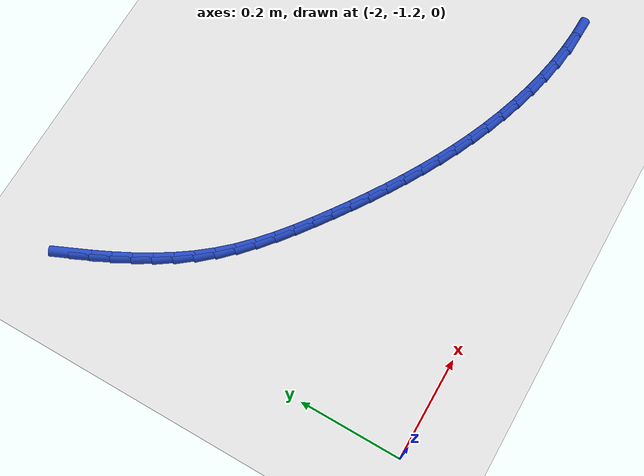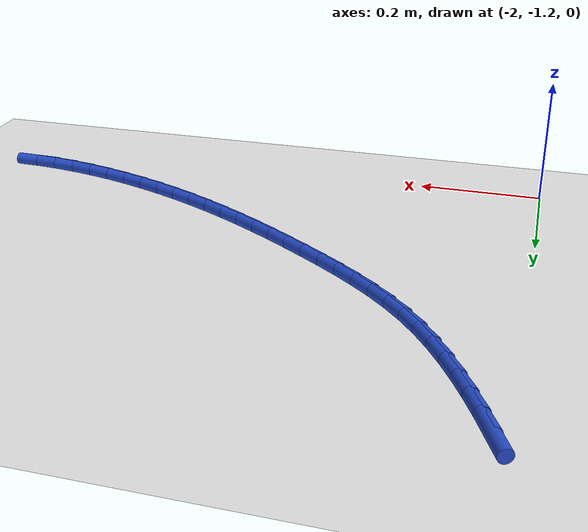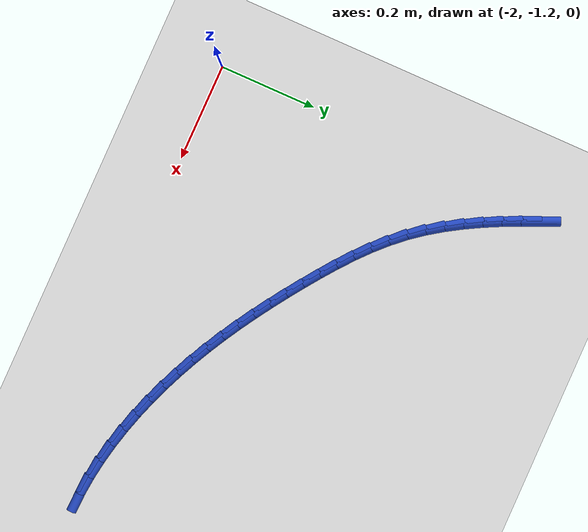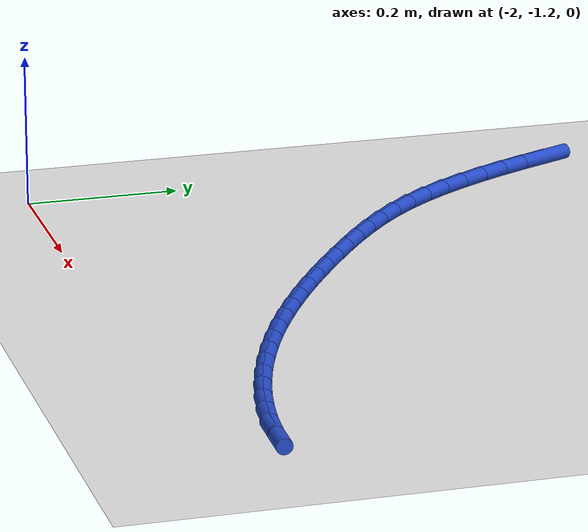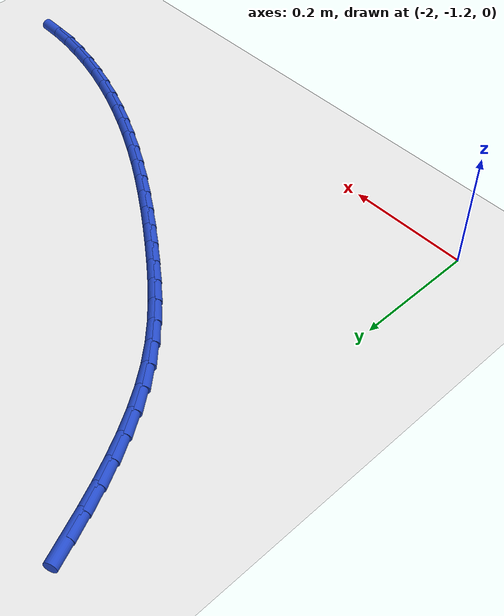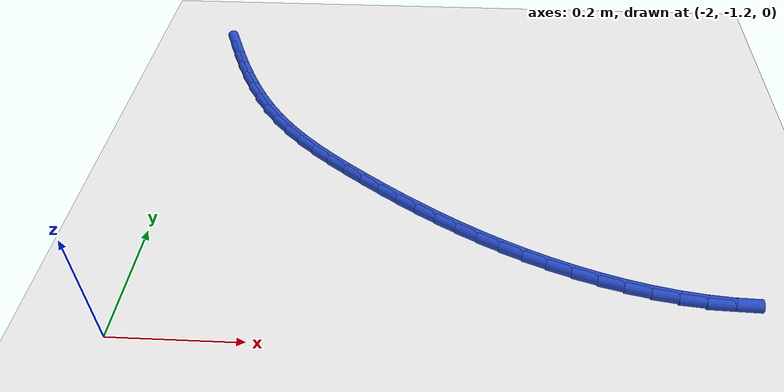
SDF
<sdf version="1.6">
 <world name="default">
  <model name="ground_plane">
   <static>1</static>
   <link name="link">
    <collision name="collision">
     <geometry><plane><normal>0 0 1</normal><size>100 100</size></plane></geometry>
     <surface><friction><ode><mu>100</mu><mu2>50</mu2></ode></friction></surface>
    </collision>
    <visual name="visual">
     <cast_shadows>0</cast_shadows>
     <geometry><plane><normal>0 0 1</normal><size>100 100</size></plane></geometry>
     <material>
      <script><uri>file://media/materials/scripts/gazebo.material</uri><name>Gazebo/WhiteGlow</name></script>
     </material>
    </visual>
   </link>
  </model>
  <model name="line">
   <link name="link_106">
    <pose>-1.9747668938679543 -0.49612269168113277 0.01 0 1.57 -1.159052395977278</pose>
    <collision name="collision">
     <geometry><cylinder><radius>0.01</radius><length>0.08</length></cylinder></geometry>
    </collision>
    <visual name="visual">
     <material>
      <script><name>Gazebo/Blue</name><uri>file://media/materials/scripts/gazebo.material</uri></script>
     </material>
     <geometry><cylinder><radius>0.01</radius><length>0.08</length></cylinder></geometry>
    </visual>
   </link>
   <link name="link_107">
    <pose>-1.9596885386729652 -0.5306501544249308 0.01 0 1.57 -1.1339794602412006</pose>
    <collision name="collision">
     <geometry><cylinder><radius>0.01</radius><length>0.08</length></cylinder></geometry>
    </collision>
    <visual name="visual">
     <material>
      <script><name>Gazebo/Blue</name><uri>file://media/materials/scripts/gazebo.material</uri></script>
     </material>
     <geometry><cylinder><radius>0.01</radius><length>0.08</length></cylinder></geometry>
    </visual>
   </link>
   <link name="link_108">
    <pose>-1.9436116615523364 -0.5650835578297396 0.01 0 1.57 -1.1030105891245756</pose>
    <collision name="collision">
     <geometry><cylinder><radius>0.01</radius><length>0.08</length></cylinder></geometry>
    </collision>
    <visual name="visual">
     <material>
      <script><name>Gazebo/Blue</name><uri>file://media/materials/scripts/gazebo.material</uri></script>
     </material>
     <geometry><cylinder><radius>0.01</radius><length>0.08</length></cylinder></geometry>
    </visual>
   </link>
   <link name="link_109">
    <pose>-1.9263887861754894 -0.5991758792661828 0.01 0 1.57 -1.0651520538875545</pose>
    <collision name="collision">
     <geometry><cylinder><radius>0.01</radius><length>0.08</length></cylinder></geometry>
    </collision>
    <visual name="visual">
     <material>
      <script><name>Gazebo/Blue</name><uri>file://media/materials/scripts/gazebo.material</uri></script>
     </material>
     <geometry><cylinder><radius>0.01</radius><length>0.08</length></cylinder></geometry>
    </visual>
   </link>
   <link name="link_110">
    <pose>-1.9078584686362965 -0.6326450076371312 0.01 0 1.57 -1.0200344109234345</pose>
    <collision name="collision">
     <geometry><cylinder><radius>0.01</radius><length>0.08</length></cylinder></geometry>
    </collision>
    <visual name="visual">
     <material>
      <script><name>Gazebo/Blue</name><uri>file://media/materials/scripts/gazebo.material</uri></script>
     </material>
     <geometry><cylinder><radius>0.01</radius><length>0.08</length></cylinder></geometry>
    </visual>
   </link>
   <link name="link_111">
    <pose>-1.887859265028629 -0.6652088318454581 0.01 0 1.57 -0.9672493798110179</pose>
    <collision name="collision">
     <geometry><cylinder><radius>0.01</radius><length>0.08</length></cylinder></geometry>
    </collision>
    <visual name="visual">
     <material>
      <script><name>Gazebo/Blue</name><uri>file://media/materials/scripts/gazebo.material</uri></script>
     </material>
     <geometry><cylinder><radius>0.01</radius><length>0.08</length></cylinder></geometry>
    </visual>
   </link>
   <link name="link_112">
    <pose>-1.8662297314463592 -0.6965852407940357 0.01 0 1.57 -0.9064201016126298</pose>
    <collision name="collision">
     <geometry><cylinder><radius>0.01</radius><length>0.08</length></cylinder></geometry>
    </collision>
    <visual name="visual">
     <material>
      <script><name>Gazebo/Blue</name><uri>file://media/materials/scripts/gazebo.material</uri></script>
     </material>
     <geometry><cylinder><radius>0.01</radius><length>0.08</length></cylinder></geometry>
    </visual>
   </link>
   <link name="link_113">
    <pose>-1.8428084239833589 -0.7264921233857367 0.01 0 1.57 -0.839104721016635</pose>
    <collision name="collision">
     <geometry><cylinder><radius>0.01</radius><length>0.08</length></cylinder></geometry>
    </collision>
    <visual name="visual">
     <material>
      <script><name>Gazebo/Blue</name><uri>file://media/materials/scripts/gazebo.material</uri></script>
     </material>
     <geometry><cylinder><radius>0.01</radius><length>0.08</length></cylinder></geometry>
    </visual>
   </link>
   <link name="link_114">
    <pose>-1.8174802569959478 -0.7546981977285234 0.01 0 1.57 -0.7769317432419844</pose>
    <collision name="collision">
     <geometry><cylinder><radius>0.01</radius><length>0.08</length></cylinder></geometry>
    </collision>
    <visual name="visual">
     <material>
      <script><name>Gazebo/Blue</name><uri>file://media/materials/scripts/gazebo.material</uri></script>
     </material>
     <geometry><cylinder><radius>0.01</radius><length>0.08</length></cylinder></geometry>
    </visual>
   </link>
   <link name="link_115">
    <pose>-1.7904267761726427 -0.7812974213596293 0.01 0 1.57 -0.7246496233174378</pose>
    <collision name="collision">
     <geometry><cylinder><radius>0.01</radius><length>0.08</length></cylinder></geometry>
    </collision>
    <visual name="visual">
     <material>
      <script><name>Gazebo/Blue</name><uri>file://media/materials/scripts/gazebo.material</uri></script>
     </material>
     <geometry><cylinder><radius>0.01</radius><length>0.08</length></cylinder></geometry>
    </visual>
   </link>
   <link name="link_116">
    <pose>-1.7619463995458908 -0.8065118957117933 0.01 0 1.57 -0.6822183252851818</pose>
    <collision name="collision">
     <geometry><cylinder><radius>0.01</radius><length>0.08</length></cylinder></geometry>
    </collision>
    <visual name="visual">
     <material>
      <script><name>Gazebo/Blue</name><uri>file://media/materials/scripts/gazebo.material</uri></script>
     </material>
     <geometry><cylinder><radius>0.01</radius><length>0.08</length></cylinder></geometry>
    </visual>
   </link>
   <link name="link_117">
    <pose>-1.7323378278261357 -0.8305640321581444 0.01 0 1.57 -0.6494388061060575</pose>
    <collision name="collision">
     <geometry><cylinder><radius>0.01</radius><length>0.08</length></cylinder></geometry>
    </collision>
    <visual name="visual">
     <material>
      <script><name>Gazebo/Blue</name><uri>file://media/materials/scripts/gazebo.material</uri></script>
     </material>
     <geometry><cylinder><radius>0.01</radius><length>0.08</length></cylinder></geometry>
    </visual>
   </link>
   <link name="link_118">
    <pose>-1.7018997617238214 -0.853676242071812 0.01 0 1.57 -0.6260850851672385</pose>
    <collision name="collision">
     <geometry><cylinder><radius>0.01</radius><length>0.08</length></cylinder></geometry>
    </collision>
    <visual name="visual">
     <material>
      <script><name>Gazebo/Blue</name><uri>file://media/materials/scripts/gazebo.material</uri></script>
     </material>
     <geometry><cylinder><radius>0.01</radius><length>0.08</length></cylinder></geometry>
    </visual>
   </link>
   <link name="link_119">
    <pose>-1.6709308966886345 -0.8760709324034839 0.01 0 1.57 -0.6097737237790776</pose>
    <collision name="collision">
     <geometry><cylinder><radius>0.01</radius><length>0.08</length></cylinder></geometry>
    </collision>
    <visual name="visual">
     <material>
      <script><name>Gazebo/Blue</name><uri>file://media/materials/scripts/gazebo.material</uri></script>
     </material>
     <geometry><cylinder><radius>0.01</radius><length>0.08</length></cylinder></geometry>
    </visual>
   </link>
   <link name="link_120">
    <pose>-1.6396629209960647 -0.8979141807189591 0.01 0 1.57 -0.5926861864095981</pose>
    <collision name="collision">
     <geometry><cylinder><radius>0.01</radius><length>0.08</length></cylinder></geometry>
    </collision>
    <visual name="visual">
     <material>
      <script><name>Gazebo/Blue</name><uri>file://media/materials/scripts/gazebo.material</uri></script>
     </material>
     <geometry><cylinder><radius>0.01</radius><length>0.08</length></cylinder></geometry>
    </visual>
   </link>
   <link name="link_121">
    <pose>-1.6080930843508636 -0.9191749844856302 0.01 0 1.57 -0.5731223047044252</pose>
    <collision name="collision">
     <geometry><cylinder><radius>0.01</radius><length>0.08</length></cylinder></geometry>
    </collision>
    <visual name="visual">
     <material>
      <script><name>Gazebo/Blue</name><uri>file://media/materials/scripts/gazebo.material</uri></script>
     </material>
     <geometry><cylinder><radius>0.01</radius><length>0.08</length></cylinder></geometry>
    </visual>
   </link>
   <link name="link_122">
    <pose>-1.5761673947834038 -0.9397792650072854 0.01 0 1.57 -0.551091500490156</pose>
    <collision name="collision">
     <geometry><cylinder><radius>0.01</radius><length>0.08</length></cylinder></geometry>
    </collision>
    <visual name="visual">
     <material>
      <script><name>Gazebo/Blue</name><uri>file://media/materials/scripts/gazebo.material</uri></script>
     </material>
     <geometry><cylinder><radius>0.01</radius><length>0.08</length></cylinder></geometry>
    </visual>
   </link>
   <link name="link_123">
    <pose>-1.5438318603240597 -0.9596529435877132 0.01 0 1.57 -0.5266180660433878</pose>
    <collision name="collision">
     <geometry><cylinder><radius>0.01</radius><length>0.08</length></cylinder></geometry>
    </collision>
    <visual name="visual">
     <material>
      <script><name>Gazebo/Blue</name><uri>file://media/materials/scripts/gazebo.material</uri></script>
     </material>
     <geometry><cylinder><radius>0.01</radius><length>0.08</length></cylinder></geometry>
    </visual>
   </link>
   <link name="link_124">
    <pose>-1.5110324890032028 -0.9787219415307007 0.01 0 1.57 -0.49974497983979294</pose>
    <collision name="collision">
     <geometry><cylinder><radius>0.01</radius><length>0.08</length></cylinder></geometry>
    </collision>
    <visual name="visual">
     <material>
      <script><name>Gazebo/Blue</name><uri>file://media/materials/scripts/gazebo.material</uri></script>
     </material>
     <geometry><cylinder><radius>0.01</radius><length>0.08</length></cylinder></geometry>
    </visual>
   </link>
   <link name="link_125">
    <pose>-1.4777152888512075 -0.9969121801400366 0.01 0 1.57 -0.47053777999995966</pose>
    <collision name="collision">
     <geometry><cylinder><radius>0.01</radius><length>0.08</length></cylinder></geometry>
    </collision>
    <visual name="visual">
     <material>
      <script><name>Gazebo/Blue</name><uri>file://media/materials/scripts/gazebo.material</uri></script>
     </material>
     <geometry><cylinder><radius>0.01</radius><length>0.08</length></cylinder></geometry>
    </visual>
   </link>
   <link name="link_126">
    <pose>-1.4438262678984468 -1.0141495807195096 0.01 0 1.57 -0.4390882319153241</pose>
    <collision name="collision">
     <geometry><cylinder><radius>0.01</radius><length>0.08</length></cylinder></geometry>
    </collision>
    <visual name="visual">
     <material>
      <script><name>Gazebo/Blue</name><uri>file://media/materials/scripts/gazebo.material</uri></script>
     </material>
     <geometry><cylinder><radius>0.01</radius><length>0.08</length></cylinder></geometry>
    </visual>
   </link>
   <link name="link_127">
    <pose>-1.4093114341752944 -1.0303600645729059 0.01 0 1.57 -0.4055174608701603</pose>
    <collision name="collision">
     <geometry><cylinder><radius>0.01</radius><length>0.08</length></cylinder></geometry>
    </collision>
    <visual name="visual">
     <material>
      <script><name>Gazebo/Blue</name><uri>file://media/materials/scripts/gazebo.material</uri></script>
     </material>
     <geometry><cylinder><radius>0.01</radius><length>0.08</length></cylinder></geometry>
    </visual>
   </link>
   <link name="link_128">
    <pose>-1.3741167957121239 -1.0454695530040148 0.01 0 1.57 -0.36997801663042656</pose>
    <collision name="collision">
     <geometry><cylinder><radius>0.01</radius><length>0.08</length></cylinder></geometry>
    </collision>
    <visual name="visual">
     <material>
      <script><name>Gazebo/Blue</name><uri>file://media/materials/scripts/gazebo.material</uri></script>
     </material>
     <geometry><cylinder><radius>0.01</radius><length>0.08</length></cylinder></geometry>
    </visual>
   </link>
   <link name="link_129">
    <pose>-1.3381884128246582 -1.0594039405449078 0.01 0 1.57 -0.3324631760478082</pose>
    <collision name="collision">
     <geometry><cylinder><radius>0.01</radius><length>0.08</length></cylinder></geometry>
    </collision>
    <visual name="visual">
     <material>
      <script><name>Gazebo/Blue</name><uri>file://media/materials/scripts/gazebo.material</uri></script>
     </material>
     <geometry><cylinder><radius>0.01</radius><length>0.08</length></cylinder></geometry>
    </visual>
   </link>
   <link name="link_130">
    <pose>-1.301519607945368 -1.072064922062896 0.01 0 1.57 -0.29234274078658495</pose>
    <collision name="collision">
     <geometry><cylinder><radius>0.01</radius><length>0.08</length></cylinder></geometry>
    </collision>
    <visual name="visual">
     <material>
      <script><name>Gazebo/Blue</name><uri>file://media/materials/scripts/gazebo.material</uri></script>
     </material>
     <geometry><cylinder><radius>0.01</radius><length>0.08</length></cylinder></geometry>
    </visual>
   </link>
   <link name="link_131">
    <pose>-1.2642380581992236 -1.0832853986694915 0.01 0 1.57 -0.2490890543201177</pose>
    <collision name="collision">
     <geometry><cylinder><radius>0.01</radius><length>0.08</length></cylinder></geometry>
    </collision>
    <visual name="visual">
     <material>
      <script><name>Gazebo/Blue</name><uri>file://media/materials/scripts/gazebo.material</uri></script>
     </material>
     <geometry><cylinder><radius>0.01</radius><length>0.08</length></cylinder></geometry>
    </visual>
   </link>
   <link name="link_132">
    <pose>-1.2264951543877527 -1.0928861293407637 0.01 0 1.57 -0.20222144456915478</pose>
    <collision name="collision">
     <geometry><cylinder><radius>0.01</radius><length>0.08</length></cylinder></geometry>
    </collision>
    <visual name="visual">
     <material>
      <script><name>Gazebo/Blue</name><uri>file://media/materials/scripts/gazebo.material</uri></script>
     </material>
     <geometry><cylinder><radius>0.01</radius><length>0.08</length></cylinder></geometry>
    </visual>
   </link>
   <link name="link_133">
    <pose>-1.1884422873124787 -1.100687873052782 0.01 0 1.57 -0.15123866724997143</pose>
    <collision name="collision">
     <geometry><cylinder><radius>0.01</radius><length>0.08</length></cylinder></geometry>
    </collision>
    <visual name="visual">
     <material>
      <script><name>Gazebo/Blue</name><uri>file://media/materials/scripts/gazebo.material</uri></script>
     </material>
     <geometry><cylinder><radius>0.01</radius><length>0.08</length></cylinder></geometry>
    </visual>
   </link>
   <link name="link_134">
    <pose>-1.1502308477749281 -1.1065113887816167 0.01 0 1.57 -0.09563046047250552</pose>
    <collision name="collision">
     <geometry><cylinder><radius>0.01</radius><length>0.08</length></cylinder></geometry>
    </collision>
    <visual name="visual">
     <material>
      <script><name>Gazebo/Blue</name><uri>file://media/materials/scripts/gazebo.material</uri></script>
     </material>
     <geometry><cylinder><radius>0.01</radius><length>0.08</length></cylinder></geometry>
    </visual>
   </link>
   <link name="link_135">
    <pose>-1.112012226576625 -1.1101774355033376 0.01 0 1.57 -0.03489999871173085</pose>
    <collision name="collision">
     <geometry><cylinder><radius>0.01</radius><length>0.08</length></cylinder></geometry>
    </collision>
    <visual name="visual">
     <material>
      <script><name>Gazebo/Blue</name><uri>file://media/materials/scripts/gazebo.material</uri></script>
     </material>
     <geometry><cylinder><radius>0.01</radius><length>0.08</length></cylinder></geometry>
    </visual>
   </link>
  </model>
 </world>
</sdf>
